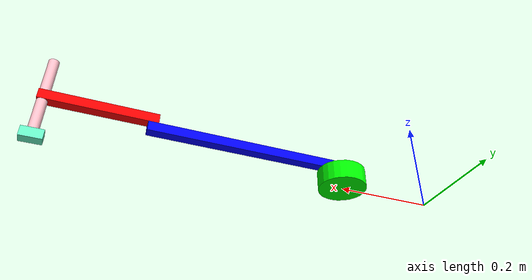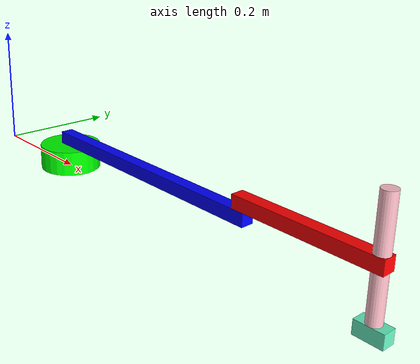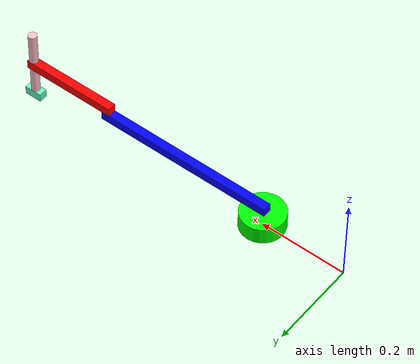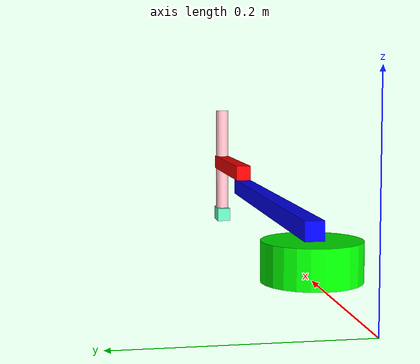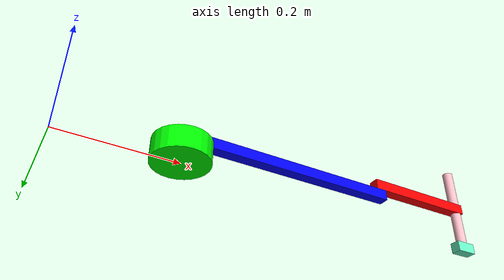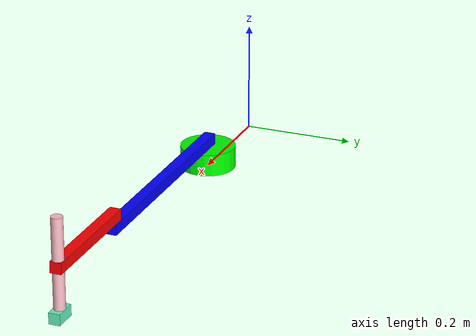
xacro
<?xml version="1.0"?>

<robot name="double_pendulum" xmlns:xacro="http://www.ros.org/wiki/xacro">
    <xacro:include filename="double_pendulum_params.xacro"/>

  <!-- World link -->
  <link name="world"/>

  <!-- Link base (fijo) -->
  <link name="base_link">
      <visual>
          <origin xyz="0 0 0.02"/>
          <geometry>
              <cylinder radius="0.05" length="0.04"/>
          </geometry>
          <material name="green">
              <color rgba="0 1 0 1"/>
          </material>
      </visual>
      <collision>
          <origin xyz="0 0 0.02"/>
          <geometry>
              <cylinder radius="0.05" length="0.04"/>
          </geometry>
      </collision>
  </link>

  <!-- Primer eslabón -->
  <link name="link1">
      <visual>
          <origin xyz="${L1/2} 0 0"/>
          <geometry>
              <box size="${L1+0.02} ${link_width} ${link_height}"/>
          </geometry>
          <material name="blue">
              <color rgba="0 0 1 1"/>
          </material>
      </visual>
      <collision>
          <origin xyz="${L1/2} 0 0"/>
          <geometry>
              <box size="${L1+0.02} ${link_width} ${link_height}"/>
          </geometry>
      </collision>
  </link>

  <!-- Segundo eslabón -->
  <link name="link2">
      <visual>
          <origin xyz="0.1 0 0"/>
          <geometry>
              <box size="0.22 0.02 0.02"/>
          </geometry>
          <material name="red">
              <color rgba="1 0 0 1"/>
          </material>
      </visual>
      <collision>
          <origin xyz="0.1 0 0"/>
          <geometry>
              <box size="0.2 0.02 0.02"/>
          </geometry>
      </collision>
  </link>

  <!-- cilindro - brazo -->
  <link name="link3">
      <visual>
          <origin xyz="0 0 0"/>
          <geometry>
              <cylinder radius="0.01" length="${L3}"/>
          </geometry>
          <material name="pink">
              <color rgba="1 0.75 0.79 1"/>
          </material>
      </visual>
      <collision>
          <origin xyz="0.1 0 0"/>
          <geometry>
              <box size="0 0 ${-L3}"/>
          </geometry>
      </collision>
  </link>

  <link name="link4">
      <visual>
          <origin xyz="0 0 0"/>
          <geometry>
              <box size="${link_width*2} ${link_width} ${link_height}"/>
          </geometry>
          <material name="lightblue">
              <color rgba="0.4 0.95 0.76 1"/>
          </material>
      </visual>
      <collision>
          <origin xyz="0.1 0 0"/>
          <geometry>
              <box size="0 0 0"/>
          </geometry>
      </collision>
  </link>

  <!--******************* DEFINICIONES DE JUNTAS  *******************-->
  <!-- Junta fija entre world y base_link -->
  <joint name="fixed" type="fixed">
      <parent link="world"/>
      <child link="base_link"/>
      <origin xyz="0.2 0 0" rpy="0 0 0"/>
  </joint>

  <!-- Junta entre base y link1 -->
  <joint name="joint1" type="revolute">
      <parent link="base_link"/>
      <child link="link1"/>
      <origin xyz="0 0 0.05"/>
      <axis xyz="0 0 1"/>
      <limit effort="1000" lower="-3.14" upper="3.14" velocity="5"/>
  </joint>

  <!-- Junta entre link1 y link2 -->
  <joint name="joint2" type="revolute">
      <parent link="link1"/>
      <child link="link2"/>
      <origin xyz="${L1} 0 ${link_height}"/>
      <axis xyz="0 0 1"/>
      <limit effort="1000" lower="-3.14" upper="3.14" velocity="5"/>
  </joint>

    <!-- Junta entre link2 y link3 -->
  <joint name="joint3" type="prismatic">
      <parent link="link2"/>
      <child link="link3"/>
      <origin xyz="0.2 0 0"/>
      <axis xyz="0 0 1"/>
      <limit effort="1000" lower="${-L3/2}" upper="${L3/2-link_height}" velocity="1"/>
  </joint>

  <!-- Junta entre link3 y link4 -->
  <joint name="joint4" type="revolute">
      <parent link="link3"/>
      <child link="link4"/>
      <origin xyz="0 0 ${-L3/2}"/>
      <axis xyz="0 0 1"/>
      <limit effort="1000" lower="-3.14" upper="3.14" velocity="5"/>
  </joint>

</robot>

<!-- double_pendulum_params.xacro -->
<robot xmlns:xacro="http://www.ros.org/wiki/xacro">

    <!-- Longitudes -->
    <xacro:property name="L1" value="0.4"/>
    <xacro:property name="L2" value="0.2"/>
    <xacro:property name="L3" value="0.169"/>

    <!-- Espesores -->
    <xacro:property name="link_width" value="0.02"/>
    <xacro:property name="link_height" value="0.02"/>

</robot>
